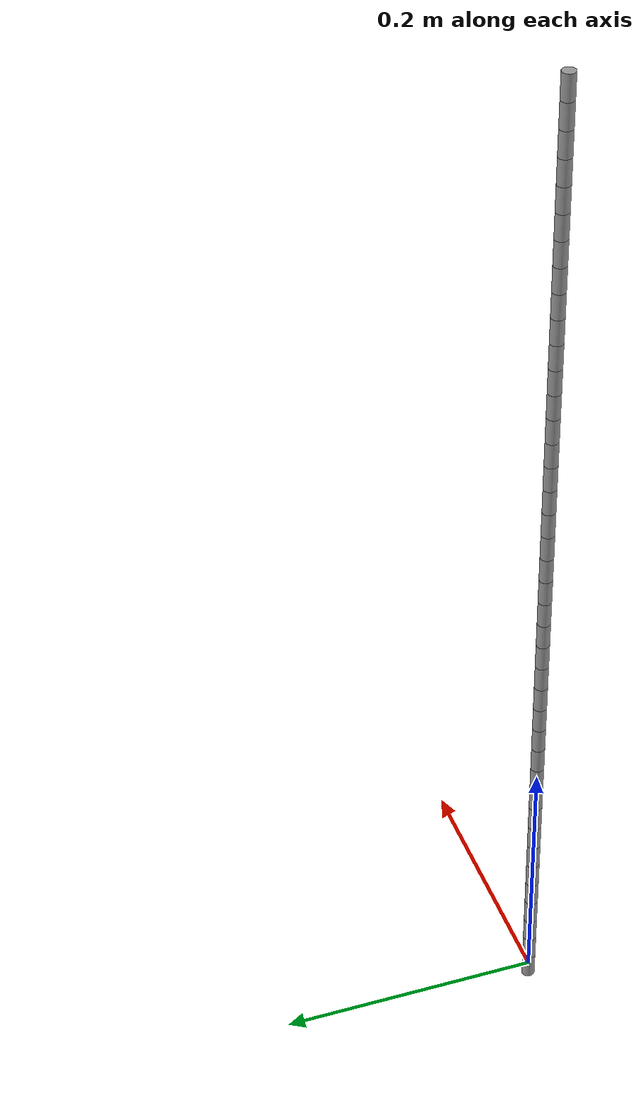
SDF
<?xml version='1.0'?>
 <sdf version='1.5'>
  <model name="tether">
   <static>false</static>

 				<!-- DEFINITION OF LINKS -->

    <link name='linking_1'>
      <pose>0 0 0 0 0 0</pose>

      <inertial>
        <mass>0.005000</mass>
        <inertia>
          <ixx>0.005000</ixx>
          <ixy>0.000000</ixy>
          <ixz>0.000000</ixz>
          <iyy>0.005000</iyy>
          <iyz>0.000000</iyz>
          <izz>0.005000</izz>
        </inertia>
      </inertial>
      <collision name="collision">
        <geometry>
          <cylinder>
            <length>0.01</length>
            <radius>0.005</radius>
          </cylinder>
        </geometry>
      </collision>
      <visual name="visual">
        <geometry>
          <cylinder>
            <length>0.02</length>
            <radius>0.005</radius>
          </cylinder>
        </geometry>
        <material>
          <script>
            <name>Gazebo/Grey</name>
          </script>
          <ambient>1 1 1 1</ambient>
        </material>
      </visual>
    </link>

    <link name='linking_2'>
    <pose> 0 0 0.02 0 0 0 </pose>

      <inertial>
        <mass>0.005000</mass>
        <inertia>
          <ixx>0.005000</ixx>
          <ixy>0.000000</ixy>
          <ixz>0.000000</ixz>
          <iyy>0.005000</iyy>
          <iyz>0.000000</iyz>
          <izz>0.005000</izz>
        </inertia>
      </inertial>
      <collision name="collision">
        <geometry>
          <cylinder>
            <length>0.01</length>
            <radius>0.005</radius>
          </cylinder>
        </geometry>
      </collision>
      <visual name="visual">
        <geometry>
          <cylinder>
            <length>0.02</length>
            <radius>0.005</radius>
          </cylinder>
        </geometry>
        <material>
          <script>
            <name>Gazebo/Grey</name>
          </script>
          <ambient>1 1 1 1</ambient>
        </material>
      </visual>
    </link>

    <joint name="tether/joint_01_02" type="revolute">
      <pose>0 0 -0.01 0 0 0</pose>
      <child>linking_2</child>
      <parent>linking_1</parent>
      <axis>
        <xyz>1 1 0</xyz>
            <limit>
          <lower>-3.00000</lower>
          <upper>3.00000</upper>
        </limit>
        <dynamics>
          <damping>0.1000000</damping>
        </dynamics>
      </axis>
    </joint>

    <link name='linking_3'>
      <pose>0 0 0.04 0 0 0 </pose>

      <inertial>
        <mass>0.005000</mass>
        <inertia>
          <ixx>0.005000</ixx>
          <ixy>0.000000</ixy>
          <ixz>0.000000</ixz>
          <iyy>0.005000</iyy>
          <iyz>0.000000</iyz>
          <izz>0.005000</izz>
        </inertia>
      </inertial>
      <collision name="collision">
        <geometry>
          <cylinder>
            <length>0.01</length>
            <radius>0.005</radius>
          </cylinder>
        </geometry>
      </collision>
      <visual name="visual">
        <geometry>
          <cylinder>
            <length>0.02</length>
            <radius>0.005</radius>
          </cylinder>
        </geometry>
        <material>
          <script>
            <name>Gazebo/Grey</name>
          </script>
          <ambient>1 1 1 1</ambient>
        </material>
      </visual>
    </link>

    <joint name="tether/joint_02_03" type="revolute">
      <pose>0 0 -0.01 0 0 0</pose>
      <child>linking_3</child>
      <parent>linking_2</parent>
      <axis>
        <xyz>1 1 0</xyz>
        <limit>
          <lower>-3.00000</lower>
          <upper>3.00000</upper>
        </limit>
        <dynamics>
          <damping>0.1000000</damping>
        </dynamics>
      </axis>
    </joint>

    <link name='linking_4'>
      <pose>0 0 0.06 0 0 0 </pose>

      <inertial>
        <mass>0.005000</mass>
        <inertia>
          <ixx>0.005000</ixx>
          <ixy>0.000000</ixy>
          <ixz>0.000000</ixz>
          <iyy>0.005000</iyy>
          <iyz>0.000000</iyz>
          <izz>0.005000</izz>
        </inertia>
      </inertial>
      <collision name="collision">
        <geometry>
          <cylinder>
            <length>0.01</length>
            <radius>0.005</radius>
          </cylinder>
        </geometry>
      </collision>
      <visual name="visual">
        <geometry>
          <cylinder>
            <length>0.02</length>
            <radius>0.005</radius>
          </cylinder>
        </geometry>
        <material>
          <script>
            <name>Gazebo/Grey</name>
          </script>
          <ambient>1 1 1 1</ambient>
        </material>
      </visual>
    </link>

    <joint name="tether/joint_03_04" type="revolute">
      <pose>0 0 -0.01 0 0 0</pose>
      <child>linking_4</child>
      <parent>linking_3</parent>
      <axis>
        <xyz>1 1 0</xyz>
        <limit>
          <lower>-3.00000</lower>
          <upper>3.00000</upper>
        </limit>
        <dynamics>
          <damping>0.1000000</damping>
        </dynamics>
      </axis>
    </joint>

    <link name='linking_5'>
      <pose>0 0 0.08 0 0 0 </pose>

      <inertial>
        <mass>0.005000</mass>
        <inertia>
          <ixx>0.005000</ixx>
          <ixy>0.000000</ixy>
          <ixz>0.000000</ixz>
          <iyy>0.005000</iyy>
          <iyz>0.000000</iyz>
          <izz>0.005000</izz>
        </inertia>
      </inertial>
      <collision name="collision">
        <geometry>
          <cylinder>
            <length>0.01</length>
            <radius>0.005</radius>
          </cylinder>
        </geometry>
      </collision>
      <visual name="visual">
        <geometry>
          <cylinder>
            <length>0.02</length>
            <radius>0.005</radius>
          </cylinder>
        </geometry>
        <material>
          <script>
            <name>Gazebo/Grey</name>
          </script>
          <ambient>1 1 1 1</ambient>
        </material>
      </visual>
    </link>

    <joint name="tether/joint_04_05" type="revolute">
      <pose>0 0 -0.01 0 0 0</pose>
      <child>linking_5</child>
      <parent>linking_4</parent>
      <axis>
        <xyz>1 1 0</xyz>
        <limit>
          <lower>-3.00000</lower>
          <upper>3.00000</upper>
        </limit>
        <dynamics>
          <damping>0.1000000</damping>
        </dynamics>
      </axis>
    </joint>

    <link name='linking_6'>
      <pose>0 0 0.1 0 0 0 </pose>

      <inertial>
        <mass>0.005000</mass>
        <inertia>
          <ixx>0.005000</ixx>
          <ixy>0.000000</ixy>
          <ixz>0.000000</ixz>
          <iyy>0.005000</iyy>
          <iyz>0.000000</iyz>
          <izz>0.005000</izz>
        </inertia>
      </inertial>
      <collision name="collision">
        <geometry>
          <cylinder>
            <length>0.01</length>
            <radius>0.005</radius>
          </cylinder>
        </geometry>
      </collision>
      <visual name="visual">
        <geometry>
          <cylinder>
            <length>0.02</length>
            <radius>0.005</radius>
          </cylinder>
        </geometry>
        <material>
          <script>
            <name>Gazebo/Grey</name>
          </script>
          <ambient>1 1 1 1</ambient>
        </material>
      </visual>
    </link>

    <joint name="tether/joint_05_06" type="revolute">
      <pose>0 0 -0.01 0 0 0</pose>
      <child>linking_6</child>
      <parent>linking_5</parent>
      <axis>
        <xyz>1 1 0</xyz>
        <limit>
          <lower>-3.00000</lower>
          <upper>3.00000</upper>
        </limit>
        <dynamics>
          <damping>0.1000000</damping>
        </dynamics>
      </axis>
    </joint>

    <link name='linking_7'>
      <pose>0 0 0.12 0 0 0 </pose>

      <inertial>
        <mass>0.005000</mass>
        <inertia>
          <ixx>0.005000</ixx>
          <ixy>0.000000</ixy>
          <ixz>0.000000</ixz>
          <iyy>0.005000</iyy>
          <iyz>0.000000</iyz>
          <izz>0.005000</izz>
        </inertia>
      </inertial>
      <collision name="collision">
        <geometry>
          <cylinder>
            <length>0.01</length>
            <radius>0.005</radius>
          </cylinder>
        </geometry>
      </collision>
      <visual name="visual">
        <geometry>
          <cylinder>
            <length>0.02</length>
            <radius>0.005</radius>
          </cylinder>
        </geometry>
        <material>
          <script>
            <name>Gazebo/Grey</name>
          </script>
          <ambient>1 1 1 1</ambient>
        </material>
      </visual>
    </link>

    <joint name="tether/joint_06_07" type="revolute">
      <pose>0 0 -0.01 0 0 0</pose>
      <child>linking_7</child>
      <parent>linking_6</parent>
      <axis>
        <xyz>1 1 0</xyz>
        <limit>
          <lower>-3.00000</lower>
          <upper>3.00000</upper>
        </limit>
        <dynamics>
          <damping>0.1000000</damping>
        </dynamics>
      </axis>
    </joint>

    <link name='linking_8'>
      <pose>0 0 0.14 0 0 0 </pose>

      <inertial>
        <mass>0.005000</mass>
        <inertia>
          <ixx>0.005000</ixx>
          <ixy>0.000000</ixy>
          <ixz>0.000000</ixz>
          <iyy>0.005000</iyy>
          <iyz>0.000000</iyz>
          <izz>0.005000</izz>
        </inertia>
      </inertial>
      <collision name="collision">
        <geometry>
          <cylinder>
            <length>0.01</length>
            <radius>0.005</radius>
          </cylinder>
        </geometry>
      </collision>
      <visual name="visual">
        <geometry>
          <cylinder>
            <length>0.02</length>
            <radius>0.005</radius>
          </cylinder>
        </geometry>
        <material>
          <script>
            <name>Gazebo/Grey</name>
          </script>
          <ambient>1 1 1 1</ambient>
        </material>
      </visual>
    </link>

    <joint name="tether/joint_07_08" type="revolute">
      <pose>0 0 -0.01 0 0 0</pose>
      <child>linking_8</child>
      <parent>linking_7</parent>
      <axis>
        <xyz>1 1 0</xyz>
        <limit>
          <lower>-3.00000</lower>
          <upper>3.00000</upper>
        </limit>
        <dynamics>
          <damping>0.1000000</damping>
        </dynamics>
      </axis>
    </joint>

    <link name='linking_9'>
      <pose>0 0 0.16 0 0 0 </pose>

      <inertial>
        <mass>0.005000</mass>
        <inertia>
          <ixx>0.005000</ixx>
          <ixy>0.000000</ixy>
          <ixz>0.000000</ixz>
          <iyy>0.005000</iyy>
          <iyz>0.000000</iyz>
          <izz>0.005000</izz>
        </inertia>
      </inertial>
      <collision name="collision">
        <geometry>
          <cylinder>
            <length>0.01</length>
            <radius>0.005</radius>
          </cylinder>
        </geometry>
      </collision>
      <visual name="visual">
        <geometry>
          <cylinder>
            <length>0.02</length>
            <radius>0.005</radius>
          </cylinder>
        </geometry>
        <material>
          <script>
            <name>Gazebo/Grey</name>
          </script>
          <ambient>1 1 1 1</ambient>
        </material>
      </visual>
    </link>

    <joint name="tether/joint_08_09" type="revolute">
      <pose>0 0 -0.01 0 0 0</pose>
      <child>linking_9</child>
      <parent>linking_8</parent>
      <axis>
        <xyz>1 1 0</xyz>
        <limit>
          <lower>-3.00000</lower>
          <upper>3.00000</upper>
        </limit>
        <dynamics>
          <damping>0.1000000</damping>
        </dynamics>
      </axis>
    </joint>

    <link name='linking_10'>
      <pose>0 0 0.18 0 0 0 </pose>

      <inertial>
        <mass>0.005000</mass>
        <inertia>
          <ixx>0.005000</ixx>
          <ixy>0.000000</ixy>
          <ixz>0.000000</ixz>
          <iyy>0.005000</iyy>
          <iyz>0.000000</iyz>
          <izz>0.005000</izz>
        </inertia>
      </inertial>
      <collision name="collision">
        <geometry>
          <cylinder>
            <length>0.01</length>
            <radius>0.005</radius>
          </cylinder>
        </geometry>
      </collision>
      <visual name="visual">
        <geometry>
          <cylinder>
            <length>0.02</length>
            <radius>0.005</radius>
          </cylinder>
        </geometry>
        <material>
          <script>
            <name>Gazebo/Grey</name>
          </script>
          <ambient>1 1 1 1</ambient>
        </material>
      </visual>
    </link>

    <joint name="tether/joint_09_10" type="revolute">
      <pose>0 0 -0.01 0 0 0</pose>
      <child>linking_10</child>
      <parent>linking_9</parent>
      <axis>
        <xyz>1 1 0</xyz>
        <limit>
          <lower>-3.00000</lower>
          <upper>3.00000</upper>
        </limit>
        <dynamics>
          <damping>0.1000000</damping>
        </dynamics>
      </axis>
    </joint>

    <link name='linking_11'>
      <pose>0 0 0.2 0 0 0 </pose>

      <inertial>
        <mass>0.005000</mass>
        <inertia>
          <ixx>0.005000</ixx>
          <ixy>0.000000</ixy>
          <ixz>0.000000</ixz>
          <iyy>0.005000</iyy>
          <iyz>0.000000</iyz>
          <izz>0.005000</izz>
        </inertia>
      </inertial>
      <collision name="collision">
        <geometry>
          <cylinder>
            <length>0.01</length>
            <radius>0.005</radius>
          </cylinder>
        </geometry>
      </collision>
      <visual name="visual">
        <geometry>
          <cylinder>
            <length>0.02</length>
            <radius>0.005</radius>
          </cylinder>
        </geometry>
        <material>
          <script>
            <name>Gazebo/Grey</name>
          </script>
          <ambient>1 1 1 1</ambient>
        </material>
      </visual>
    </link>

    <joint name="tether/joint_10_11" type="revolute">
      <pose>0 0 -0.01 0 0 0</pose>
      <child>linking_11</child>
      <parent>linking_10</parent>
      <axis>
        <xyz>1 1 0</xyz>
        <limit>
          <lower>-3.00000</lower>
          <upper>3.00000</upper>
        </limit>
        <dynamics>
          <damping>0.1000000</damping>
        </dynamics>
      </axis>
    </joint>

    <link name='linking_12'>
      <pose>0 0 0.22 0 0 0 </pose>

      <inertial>
        <mass>0.005000</mass>
        <inertia>
          <ixx>0.005000</ixx>
          <ixy>0.000000</ixy>
          <ixz>0.000000</ixz>
          <iyy>0.005000</iyy>
          <iyz>0.000000</iyz>
          <izz>0.005000</izz>
        </inertia>
      </inertial>
      <collision name="collision">
        <geometry>
          <cylinder>
            <length>0.01</length>
            <radius>0.005</radius>
          </cylinder>
        </geometry>
      </collision>
      <visual name="visual">
        <geometry>
          <cylinder>
            <length>0.02</length>
            <radius>0.005</radius>
          </cylinder>
        </geometry>
        <material>
          <script>
            <name>Gazebo/Grey</name>
          </script>
          <ambient>1 1 1 1</ambient>
        </material>
      </visual>
    </link>

    <joint name="tether/joint_11_12" type="revolute">
      <pose>0 0 -0.01 0 0 0</pose>
      <child>linking_12</child>
      <parent>linking_11</parent>
      <axis>
        <xyz>1 1 0</xyz>
        <limit>
          <lower>-3.00000</lower>
          <upper>3.00000</upper>
        </limit>
        <dynamics>
          <damping>0.1000000</damping>
        </dynamics>
      </axis>
    </joint>

    <link name='linking_13'>
      <pose>0 0 0.24 0 0 0 </pose>

      <inertial>
        <mass>0.005000</mass>
        <inertia>
          <ixx>0.005000</ixx>
          <ixy>0.000000</ixy>
          <ixz>0.000000</ixz>
          <iyy>0.005000</iyy>
          <iyz>0.000000</iyz>
          <izz>0.005000</izz>
        </inertia>
      </inertial>
      <collision name="collision">
        <geometry>
          <cylinder>
            <length>0.01</length>
            <radius>0.005</radius>
          </cylinder>
        </geometry>
      </collision>
      <visual name="visual">
        <geometry>
          <cylinder>
            <length>0.02</length>
            <radius>0.005</radius>
          </cylinder>
        </geometry>
        <material>
          <script>
            <name>Gazebo/Grey</name>
          </script>
          <ambient>1 1 1 1</ambient>
        </material>
      </visual>
    </link>

    <joint name="tether/joint_12_13" type="revolute">
      <pose>0 0 -0.01 0 0 0</pose>
      <child>linking_13</child>
      <parent>linking_12</parent>
      <axis>
        <xyz>1 1 0</xyz>
        <limit>
          <lower>-3.00000</lower>
          <upper>3.00000</upper>
        </limit>
        <dynamics>
          <damping>0.1000000</damping>
        </dynamics>
      </axis>
    </joint>

    <link name='linking_14'>
      <pose>0 0 0.26 0 0 0 </pose>

      <inertial>
        <mass>0.005000</mass>
        <inertia>
          <ixx>0.005000</ixx>
          <ixy>0.000000</ixy>
          <ixz>0.000000</ixz>
          <iyy>0.005000</iyy>
          <iyz>0.000000</iyz>
          <izz>0.005000</izz>
        </inertia>
      </inertial>
      <collision name="collision">
        <geometry>
          <cylinder>
            <length>0.01</length>
            <radius>0.005</radius>
          </cylinder>
        </geometry>
      </collision>
      <visual name="visual">
        <geometry>
          <cylinder>
            <length>0.02</length>
            <radius>0.005</radius>
          </cylinder>
        </geometry>
        <material>
          <script>
            <name>Gazebo/Grey</name>
          </script>
          <ambient>1 1 1 1</ambient>
        </material>
      </visual>
    </link>

    <joint name="tether/joint_13_14" type="revolute">
      <pose>0 0 -0.01 0 0 0</pose>
      <child>linking_14</child>
      <parent>linking_13</parent>
      <axis>
        <xyz>1 1 0</xyz>
        <limit>
          <lower>-3.00000</lower>
          <upper>3.00000</upper>
        </limit>
        <dynamics>
          <damping>0.1000000</damping>
        </dynamics>
      </axis>
    </joint>

    <link name='linking_15'>
      <pose>0 0 0.28 0 0 0 </pose>

      <inertial>
        <mass>0.005000</mass>
        <inertia>
          <ixx>0.005000</ixx>
          <ixy>0.000000</ixy>
          <ixz>0.000000</ixz>
          <iyy>0.005000</iyy>
          <iyz>0.000000</iyz>
          <izz>0.005000</izz>
        </inertia>
      </inertial>
      <collision name="collision">
        <geometry>
          <cylinder>
            <length>0.01</length>
            <radius>0.005</radius>
          </cylinder>
        </geometry>
      </collision>
      <visual name="visual">
        <geometry>
          <cylinder>
            <length>0.02</length>
            <radius>0.005</radius>
          </cylinder>
        </geometry>
        <material>
          <script>
            <name>Gazebo/Grey</name>
          </script>
          <ambient>1 1 1 1</ambient>
        </material>
      </visual>
    </link>

    <joint name="tether/joint_14_15" type="revolute">
      <pose>0 0 -0.01 0 0 0</pose>
      <child>linking_15</child>
      <parent>linking_14</parent>
      <axis>
        <xyz>1 1 0</xyz>
        <limit>
          <lower>-3.00000</lower>
          <upper>3.00000</upper>
        </limit>
        <dynamics>
          <damping>0.1000000</damping>
        </dynamics>
      </axis>
    </joint>

    <link name='linking_16'>
      <pose>0 0 0.30 0 0 0 </pose>

      <inertial>
        <mass>0.005000</mass>
        <inertia>
          <ixx>0.005000</ixx>
          <ixy>0.000000</ixy>
          <ixz>0.000000</ixz>
          <iyy>0.005000</iyy>
          <iyz>0.000000</iyz>
          <izz>0.005000</izz>
        </inertia>
      </inertial>
      <collision name="collision">
        <geometry>
          <cylinder>
            <length>0.01</length>
            <radius>0.005</radius>
          </cylinder>
        </geometry>
      </collision>
      <visual name="visual">
        <geometry>
          <cylinder>
            <length>0.02</length>
            <radius>0.005</radius>
          </cylinder>
        </geometry>
        <material>
          <script>
            <name>Gazebo/Grey</name>
          </script>
          <ambient>1 1 1 1</ambient>
        </material>
      </visual>
    </link>

    <joint name="tether/joint_15_16" type="revolute">
      <pose>0 0 -0.01 0 0 0</pose>
      <child>linking_16</child>
      <parent>linking_15</parent>
      <axis>
        <xyz>1 1 0</xyz>
        <limit>
          <lower>-3.00000</lower>
          <upper>3.00000</upper>
        </limit>
        <dynamics>
          <damping>0.1000000</damping>
        </dynamics>
      </axis>
    </joint>

    <link name='linking_17'>
      <pose>0 0 0.32 0 0 0 </pose>

      <inertial>
        <mass>0.005000</mass>
        <inertia>
          <ixx>0.005000</ixx>
          <ixy>0.000000</ixy>
          <ixz>0.000000</ixz>
          <iyy>0.005000</iyy>
          <iyz>0.000000</iyz>
          <izz>0.005000</izz>
        </inertia>
      </inertial>
      <collision name="collision">
        <geometry>
          <cylinder>
            <length>0.01</length>
            <radius>0.005</radius>
          </cylinder>
        </geometry>
      </collision>
      <visual name="visual">
        <geometry>
          <cylinder>
            <length>0.02</length>
            <radius>0.005</radius>
          </cylinder>
        </geometry>
        <material>
          <script>
            <name>Gazebo/Grey</name>
          </script>
          <ambient>1 1 1 1</ambient>
        </material>
      </visual>
    </link>

    <joint name="tether/joint_16_17" type="revolute">
      <pose>0 0 -0.01 0 0 0</pose>
      <child>linking_17</child>
      <parent>linking_16</parent>
      <axis>
        <xyz>1 1 0</xyz>
        <limit>
          <lower>-3.00000</lower>
          <upper>3.00000</upper>
        </limit>
        <dynamics>
          <damping>0.1000000</damping>
        </dynamics>
      </axis>
    </joint>

    <link name='linking_18'>
      <pose>0 0 0.34 0 0 0 </pose>

      <inertial>
        <mass>0.005000</mass>
        <inertia>
          <ixx>0.005000</ixx>
          <ixy>0.000000</ixy>
          <ixz>0.000000</ixz>
          <iyy>0.005000</iyy>
          <iyz>0.000000</iyz>
          <izz>0.005000</izz>
        </inertia>
      </inertial>
      <collision name="collision">
        <geometry>
          <cylinder>
            <length>0.01</length>
            <radius>0.005</radius>
          </cylinder>
        </geometry>
      </collision>
      <visual name="visual">
        <geometry>
          <cylinder>
            <length>0.02</length>
            <radius>0.005</radius>
          </cylinder>
        </geometry>
        <material>
          <script>
            <name>Gazebo/Grey</name>
          </script>
          <ambient>1 1 1 1</ambient>
        </material>
      </visual>
    </link>

    <joint name="tether/joint_17_18" type="revolute">
      <pose>0 0 -0.01 0 0 0</pose>
      <child>linking_18</child>
      <parent>linking_17</parent>
      <axis>
        <xyz>1 1 0</xyz>
        <limit>
          <lower>-3.00000</lower>
          <upper>3.00000</upper>
        </limit>
        <dynamics>
          <damping>0.1000000</damping>
        </dynamics>
      </axis>
    </joint>

    <link name='linking_19'>
      <pose>0 0 0.36 0 0 0 </pose>

      <inertial>
        <mass>0.005000</mass>
        <inertia>
          <ixx>0.005000</ixx>
          <ixy>0.000000</ixy>
          <ixz>0.000000</ixz>
          <iyy>0.005000</iyy>
          <iyz>0.000000</iyz>
          <izz>0.005000</izz>
        </inertia>
      </inertial>
      <collision name="collision">
        <geometry>
          <cylinder>
            <length>0.01</length>
            <radius>0.005</radius>
          </cylinder>
        </geometry>
      </collision>
      <visual name="visual">
        <geometry>
          <cylinder>
            <length>0.02</length>
            <radius>0.005</radius>
          </cylinder>
        </geometry>
        <material>
          <script>
            <name>Gazebo/Grey</name>
          </script>
          <ambient>1 1 1 1</ambient>
        </material>
      </visual>
    </link>

    <joint name="tether/joint_18_19" type="revolute">
      <pose>0 0 -0.01 0 0 0</pose>
      <child>linking_19</child>
      <parent>linking_18</parent>
      <axis>
        <xyz>1 1 0</xyz>
        <limit>
          <lower>-3.00000</lower>
          <upper>3.00000</upper>
        </limit>
        <dynamics>
          <damping>0.1000000</damping>
        </dynamics>
      </axis>
    </joint>

    <link name='linking_20'>
      <pose>0 0 0.38 0 0 0 </pose>

      <inertial>
        <mass>0.005000</mass>
        <inertia>
          <ixx>0.005000</ixx>
          <ixy>0.000000</ixy>
          <ixz>0.000000</ixz>
          <iyy>0.005000</iyy>
          <iyz>0.000000</iyz>
          <izz>0.005000</izz>
        </inertia>
      </inertial>
      <collision name="collision">
        <geometry>
          <cylinder>
            <length>0.01</length>
            <radius>0.005</radius>
          </cylinder>
        </geometry>
      </collision>
      <visual name="visual">
        <geometry>
          <cylinder>
            <length>0.02</length>
            <radius>0.005</radius>
          </cylinder>
        </geometry>
        <material>
          <script>
            <name>Gazebo/Grey</name>
          </script>
          <ambient>1 1 1 1</ambient>
        </material>
      </visual>
    </link>

    <joint name="tether/joint_19_20" type="revolute">
      <pose>0 0 -0.01 0 0 0</pose>
      <child>linking_20</child>
      <parent>linking_19</parent>
      <axis>
        <xyz>1 1 0</xyz>
        <limit>
          <lower>-3.00000</lower>
          <upper>3.00000</upper>
        </limit>
        <dynamics>
          <damping>0.1000000</damping>
        </dynamics>
      </axis>
    </joint>

    <link name='linking_21'>
      <pose>0 0 0.40 0 0 0 </pose>

      <inertial>
        <mass>0.005000</mass>
        <inertia>
          <ixx>0.005000</ixx>
          <ixy>0.000000</ixy>
          <ixz>0.000000</ixz>
          <iyy>0.005000</iyy>
          <iyz>0.000000</iyz>
          <izz>0.005000</izz>
        </inertia>
      </inertial>
      <collision name="collision">
        <geometry>
          <cylinder>
            <length>0.01</length>
            <radius>0.005</radius>
          </cylinder>
        </geometry>
      </collision>
      <visual name="visual">
        <geometry>
          <cylinder>
            <length>0.02</length>
            <radius>0.005</radius>
          </cylinder>
        </geometry>
        <material>
          <script>
            <name>Gazebo/Grey</name>
          </script>
          <ambient>1 1 1 1</ambient>
        </material>
      </visual>
    </link>

    <joint name="tether/joint_20_21" type="revolute">
      <pose>0 0 -0.01 0 0 0</pose>
      <child>linking_21</child>
      <parent>linking_20</parent>
      <axis>
        <xyz>1 1 0</xyz>
        <limit>
          <lower>-3.00000</lower>
          <upper>3.00000</upper>
        </limit>
        <dynamics>
          <damping>0.1000000</damping>
        </dynamics>
      </axis>
    </joint>

    <link name='linking_22'>
      <pose>0 0 0.42 0 0 0 </pose>

      <inertial>
        <mass>0.005000</mass>
        <inertia>
          <ixx>0.005000</ixx>
          <ixy>0.000000</ixy>
          <ixz>0.000000</ixz>
          <iyy>0.005000</iyy>
          <iyz>0.000000</iyz>
          <izz>0.005000</izz>
        </inertia>
      </inertial>
      <collision name="collision">
        <geometry>
          <cylinder>
            <length>0.01</length>
            <radius>0.005</radius>
          </cylinder>
        </geometry>
      </collision>
      <visual name="visual">
        <geometry>
          <cylinder>
            <length>0.02</length>
            <radius>0.005</radius>
          </cylinder>
        </geometry>
        <material>
          <script>
            <name>Gazebo/Grey</name>
          </script>
          <ambient>1 1 1 1</ambient>
        </material>
      </visual>
    </link>

    <joint name="tether/joint_21_22" type="revolute">
      <pose>0 0 -0.01 0 0 0</pose>
      <child>linking_22</child>
      <parent>linking_21</parent>
      <axis>
        <xyz>1 1 0</xyz>
        <limit>
          <lower>-3.00000</lower>
          <upper>3.00000</upper>
        </limit>
        <dynamics>
          <damping>0.1000000</damping>
        </dynamics>
      </axis>
    </joint>

    <link name='linking_23'>
      <pose>0 0 0.44 0 0 0 </pose>

      <inertial>
        <mass>0.005000</mass>
        <inertia>
          <ixx>0.005000</ixx>
          <ixy>0.000000</ixy>
          <ixz>0.000000</ixz>
          <iyy>0.005000</iyy>
          <iyz>0.000000</iyz>
          <izz>0.005000</izz>
        </inertia>
      </inertial>
      <collision name="collision">
        <geometry>
          <cylinder>
            <length>0.01</length>
            <radius>0.005</radius>
          </cylinder>
        </geometry>
      </collision>
      <visual name="visual">
        <geometry>
          <cylinder>
            <length>0.02</length>
            <radius>0.005</radius>
          </cylinder>
        </geometry>
        <material>
          <script>
            <name>Gazebo/Grey</name>
          </script>
          <ambient>1 1 1 1</ambient>
        </material>
      </visual>
    </link>

    <joint name="tether/joint_22_23" type="revolute">
      <pose>0 0 -0.01 0 0 0</pose>
      <child>linking_23</child>
      <parent>linking_22</parent>
      <axis>
        <xyz>1 1 0</xyz>
        <limit>
          <lower>-3.00000</lower>
          <upper>3.00000</upper>
        </limit>
        <dynamics>
          <damping>0.1000000</damping>
        </dynamics>
      </axis>
    </joint>

    <link name='linking_24'>
      <pose>0 0 0.46 0 0 0 </pose>

      <inertial>
        <mass>0.005000</mass>
        <inertia>
          <ixx>0.005000</ixx>
          <ixy>0.000000</ixy>
          <ixz>0.000000</ixz>
          <iyy>0.005000</iyy>
          <iyz>0.000000</iyz>
          <izz>0.005000</izz>
        </inertia>
      </inertial>
      <collision name="collision">
        <geometry>
          <cylinder>
            <length>0.01</length>
            <radius>0.005</radius>
          </cylinder>
        </geometry>
      </collision>
      <visual name="visual">
        <geometry>
          <cylinder>
            <length>0.02</length>
            <radius>0.005</radius>
          </cylinder>
        </geometry>
        <material>
          <script>
            <name>Gazebo/Grey</name>
          </script>
          <ambient>1 1 1 1</ambient>
        </material>
      </visual>
    </link>

    <joint name="tether/joint_23_24" type="revolute">
      <pose>0 0 -0.01 0 0 0</pose>
      <child>linking_24</child>
      <parent>linking_23</parent>
      <axis>
        <xyz>1 1 0</xyz>
        <limit>
          <lower>-3.00000</lower>
          <upper>3.00000</upper>
        </limit>
        <dynamics>
          <damping>0.1000000</damping>
        </dynamics>
      </axis>
    </joint>

    <link name='linking_25'>
      <pose>0 0 0.48 0 0 0 </pose>

      <inertial>
        <mass>0.005000</mass>
        <inertia>
          <ixx>0.005000</ixx>
          <ixy>0.000000</ixy>
          <ixz>0.000000</ixz>
          <iyy>0.005000</iyy>
          <iyz>0.000000</iyz>
          <izz>0.005000</izz>
        </inertia>
      </inertial>
      <collision name="collision">
        <geometry>
          <cylinder>
            <length>0.01</length>
            <radius>0.005</radius>
          </cylinder>
        </geometry>
      </collision>
      <visual name="visual">
        <geometry>
          <cylinder>
            <length>0.02</length>
            <radius>0.005</radius>
          </cylinder>
        </geometry>
        <material>
          <script>
            <name>Gazebo/Grey</name>
          </script>
          <ambient>1 1 1 1</ambient>
        </material>
      </visual>
    </link>

    <joint name="tether/joint_24_25" type="revolute">
      <pose>0 0 -0.01 0 0 0</pose>
      <child>linking_25</child>
      <parent>linking_24</parent>
      <axis>
        <xyz>1 1 0</xyz>
        <limit>
          <lower>-3.00000</lower>
          <upper>3.00000</upper>
        </limit>
        <dynamics>
          <damping>0.1000000</damping>
        </dynamics>
      </axis>
    </joint>

    <link name='linking_26'>
      <pose>0 0 0.50 0 0 0 </pose>

      <inertial>
        <mass>0.005000</mass>
        <inertia>
          <ixx>0.005000</ixx>
          <ixy>0.000000</ixy>
          <ixz>0.000000</ixz>
          <iyy>0.005000</iyy>
          <iyz>0.000000</iyz>
          <izz>0.005000</izz>
        </inertia>
      </inertial>
      <collision name="collision">
        <geometry>
          <cylinder>
            <length>0.01</length>
            <radius>0.005</radius>
          </cylinder>
        </geometry>
      </collision>
      <visual name="visual">
        <geometry>
          <cylinder>
            <length>0.02</length>
            <radius>0.005</radius>
          </cylinder>
        </geometry>
        <material>
          <script>
            <name>Gazebo/Grey</name>
          </script>
          <ambient>1 1 1 1</ambient>
        </material>
      </visual>
    </link>

    <joint name="tether/joint_25_26" type="revolute">
      <pose>0 0 -0.01 0 0 0</pose>
      <child>linking_26</child>
      <parent>linking_25</parent>
      <axis>
        <xyz>1 1 0</xyz>
        <limit>
          <lower>-3.00000</lower>
          <upper>3.00000</upper>
        </limit>
        <dynamics>
          <damping>0.1000000</damping>
        </dynamics>
      </axis>
    </joint>

    <link name='linking_27'>
      <pose>0 0 0.52 0 0 0 </pose>

      <inertial>
        <mass>0.005000</mass>
        <inertia>
          <ixx>0.005000</ixx>
          <ixy>0.000000</ixy>
          <ixz>0.000000</ixz>
          <iyy>0.005000</iyy>
          <iyz>0.000000</iyz>
          <izz>0.005000</izz>
        </inertia>
      </inertial>
      <collision name="collision">
        <geometry>
          <cylinder>
            <length>0.01</length>
            <radius>0.005</radius>
          </cylinder>
        </geometry>
      </collision>
      <visual name="visual">
        <geometry>
          <cylinder>
            <length>0.02</length>
            <radius>0.005</radius>
          </cylinder>
        </geometry>
        <material>
          <script>
            <name>Gazebo/Grey</name>
          </script>
          <ambient>1 1 1 1</ambient>
        </material>
      </visual>
    </link>

    <joint name="tether/joint_26_27" type="revolute">
      <pose>0 0 -0.01 0 0 0</pose>
      <child>linking_27</child>
      <parent>linking_26</parent>
      <axis>
        <xyz>1 1 0</xyz>
        <limit>
          <lower>-3.00000</lower>
          <upper>3.00000</upper>
        </limit>
        <dynamics>
          <damping>0.1000000</damping>
        </dynamics>
      </axis>
    </joint>

    <link name='linking_28'>
      <pose>0 0 0.54 0 0 0 </pose>

      <inertial>
        <mass>0.005000</mass>
        <inertia>
          <ixx>0.005000</ixx>
          <ixy>0.000000</ixy>
          <ixz>0.000000</ixz>
          <iyy>0.005000</iyy>
          <iyz>0.000000</iyz>
          <izz>0.005000</izz>
        </inertia>
      </inertial>
      <collision name="collision">
        <geometry>
          <cylinder>
            <length>0.01</length>
            <radius>0.005</radius>
          </cylinder>
        </geometry>
      </collision>
      <visual name="visual">
        <geometry>
          <cylinder>
            <length>0.02</length>
            <radius>0.005</radius>
          </cylinder>
        </geometry>
        <material>
          <script>
            <name>Gazebo/Grey</name>
          </script>
          <ambient>1 1 1 1</ambient>
        </material>
      </visual>
    </link>

    <joint name="tether/joint_27_28" type="revolute">
      <pose>0 0 -0.01 0 0 0</pose>
      <child>linking_28</child>
      <parent>linking_27</parent>
      <axis>
        <xyz>1 1 0</xyz>
        <limit>
          <lower>-3.00000</lower>
          <upper>3.00000</upper>
        </limit>
        <dynamics>
          <damping>0.1000000</damping>
        </dynamics>
      </axis>
    </joint>

    <link name='linking_29'>
      <pose>0 0 0.56 0 0 0 </pose>

      <inertial>
        <mass>0.005000</mass>
        <inertia>
          <ixx>0.005000</ixx>
          <ixy>0.000000</ixy>
          <ixz>0.000000</ixz>
          <iyy>0.005000</iyy>
          <iyz>0.000000</iyz>
          <izz>0.005000</izz>
        </inertia>
      </inertial>
      <collision name="collision">
        <geometry>
          <cylinder>
            <length>0.01</length>
            <radius>0.005</radius>
          </cylinder>
        </geometry>
      </collision>
      <visual name="visual">
        <geometry>
          <cylinder>
            <length>0.02</length>
            <radius>0.005</radius>
          </cylinder>
        </geometry>
        <material>
          <script>
            <name>Gazebo/Grey</name>
          </script>
          <ambient>1 1 1 1</ambient>
        </material>
      </visual>
    </link>

    <joint name="tether/joint_28_29" type="revolute">
      <pose>0 0 -0.01 0 0 0</pose>
      <child>linking_29</child>
      <parent>linking_28</parent>
      <axis>
        <xyz>1 1 0</xyz>
        <limit>
          <lower>-3.00000</lower>
          <upper>3.00000</upper>
        </limit>
        <dynamics>
          <damping>0.1000000</damping>
        </dynamics>
      </axis>
    </joint>

    <link name='linking_30'>
      <pose>0 0 0.58 0 0 0 </pose>

      <inertial>
        <mass>0.005000</mass>
        <inertia>
          <ixx>0.005000</ixx>
          <ixy>0.000000</ixy>
          <ixz>0.000000</ixz>
          <iyy>0.005000</iyy>
          <iyz>0.000000</iyz>
          <izz>0.005000</izz>
        </inertia>
      </inertial>
      <collision name="collision">
        <geometry>
          <cylinder>
            <length>0.01</length>
            <radius>0.005</radius>
          </cylinder>
        </geometry>
      </collision>
      <visual name="visual">
        <geometry>
          <cylinder>
            <length>0.02</length>
            <radius>0.005</radius>
          </cylinder>
        </geometry>
        <material>
          <script>
            <name>Gazebo/Grey</name>
          </script>
          <ambient>1 1 1 1</ambient>
        </material>
      </visual>
    </link>

    <joint name="tether/joint_29_30" type="revolute">
      <pose>0 0 -0.01 0 0 0</pose>
      <child>linking_30</child>
      <parent>linking_29</parent>
      <axis>
        <xyz>1 1 0</xyz>
        <limit>
          <lower>-3.00000</lower>
          <upper>3.00000</upper>
        </limit>
        <dynamics>
          <damping>0.1000000</damping>
        </dynamics>
      </axis>
    </joint>

    <link name='linking_31'>
      <pose>0 0 0.60 0 0 0 </pose>

      <inertial>
        <mass>0.005000</mass>
        <inertia>
          <ixx>0.005000</ixx>
          <ixy>0.000000</ixy>
          <ixz>0.000000</ixz>
          <iyy>0.005000</iyy>
          <iyz>0.000000</iyz>
          <izz>0.005000</izz>
        </inertia>
      </inertial>
      <collision name="collision">
        <geometry>
          <cylinder>
            <length>0.01</length>
            <radius>0.005</radius>
          </cylinder>
        </geometry>
      </collision>
      <visual name="visual">
        <geometry>
          <cylinder>
            <length>0.02</length>
            <radius>0.005</radius>
          </cylinder>
        </geometry>
        <material>
          <script>
            <name>Gazebo/Grey</name>
          </script>
          <ambient>1 1 1 1</ambient>
        </material>
      </visual>
    </link>

    <joint name="tether/joint_30_31" type="revolute">
      <pose>0 0 -0.01 0 0 0</pose>
      <child>linking_31</child>
      <parent>linking_30</parent>
      <axis>
        <xyz>1 1 0</xyz>
        <limit>
          <lower>-3.00000</lower>
          <upper>3.00000</upper>
        </limit>
        <dynamics>
          <damping>0.1000000</damping>
        </dynamics>
      </axis>
    </joint>

    <link name='linking_32'>
      <pose>0 0 0.62 0 0 0 </pose>

      <inertial>
        <mass>0.005000</mass>
        <inertia>
          <ixx>0.005000</ixx>
          <ixy>0.000000</ixy>
          <ixz>0.000000</ixz>
          <iyy>0.005000</iyy>
          <iyz>0.000000</iyz>
          <izz>0.005000</izz>
        </inertia>
      </inertial>
      <collision name="collision">
        <geometry>
          <cylinder>
            <length>0.01</length>
            <radius>0.005</radius>
          </cylinder>
        </geometry>
      </collision>
      <visual name="visual">
        <geometry>
          <cylinder>
            <length>0.02</length>
            <radius>0.005</radius>
          </cylinder>
        </geometry>
        <material>
          <script>
            <name>Gazebo/Grey</name>
          </script>
          <ambient>1 1 1 1</ambient>
        </material>
      </visual>
    </link>

    <joint name="tether/joint_31_32" type="revolute">
      <pose>0 0 -0.01 0 0 0</pose>
      <child>linking_32</child>
      <parent>linking_31</parent>
      <axis>
        <xyz>1 1 0</xyz>
        <limit>
          <lower>-3.00000</lower>
          <upper>3.00000</upper>
        </limit>
        <dynamics>
          <damping>0.1000000</damping>
        </dynamics>
      </axis>
    </joint>

    <link name='linking_33'>
      <pose>0 0 0.64 0 0 0 </pose>

      <inertial>
        <mass>0.005000</mass>
        <inertia>
          <ixx>0.005000</ixx>
          <ixy>0.000000</ixy>
          <ixz>0.000000</ixz>
          <iyy>0.005000</iyy>
          <iyz>0.000000</iyz>
          <izz>0.005000</izz>
        </inertia>
      </inertial>
      <collision name="collision">
        <geometry>
          <cylinder>
            <length>0.01</length>
            <radius>0.005</radius>
          </cylinder>
        </geometry>
      </collision>
      <visual name="visual">
        <geometry>
          <cylinder>
            <length>0.02</length>
            <radius>0.005</radius>
          </cylinder>
        </geometry>
        <material>
          <script>
            <name>Gazebo/Grey</name>
          </script>
          <ambient>1 1 1 1</ambient>
        </material>
      </visual>
    </link>

    <joint name="tether/joint_32_33" type="revolute">
      <pose>0 0 -0.01 0 0 0</pose>
      <child>linking_33</child>
      <parent>linking_32</parent>
      <axis>
        <xyz>1 1 0</xyz>
        <limit>
          <lower>-3.00000</lower>
          <upper>3.00000</upper>
        </limit>
        <dynamics>
          <damping>0.1000000</damping>
        </dynamics>
      </axis>
    </joint>

    <link name='linking_34'>
      <pose>0 0 0.66 0 0 0 </pose>

      <inertial>
        <mass>0.005000</mass>
        <inertia>
          <ixx>0.005000</ixx>
          <ixy>0.000000</ixy>
          <ixz>0.000000</ixz>
          <iyy>0.005000</iyy>
          <iyz>0.000000</iyz>
          <izz>0.005000</izz>
        </inertia>
      </inertial>
      <collision name="collision">
        <geometry>
          <cylinder>
            <length>0.01</length>
            <radius>0.005</radius>
          </cylinder>
        </geometry>
      </collision>
      <visual name="visual">
        <geometry>
          <cylinder>
            <length>0.02</length>
            <radius>0.005</radius>
          </cylinder>
        </geometry>
        <material>
          <script>
            <name>Gazebo/Grey</name>
          </script>
          <ambient>1 1 1 1</ambient>
        </material>
      </visual>
    </link>

    <joint name="tether/joint_33_34" type="revolute">
      <pose>0 0 -0.01 0 0 0</pose>
      <child>linking_34</child>
      <parent>linking_33</parent>
      <axis>
        <xyz>1 1 0</xyz>
        <limit>
          <lower>-3.00000</lower>
          <upper>3.00000</upper>
        </limit>
        <dynamics>
          <damping>0.1000000</damping>
        </dynamics>
      </axis>
    </joint>

    <link name='linking_35'>
      <pose>0 0 0.68 0 0 0 </pose>

      <inertial>
        <mass>0.005000</mass>
        <inertia>
          <ixx>0.005000</ixx>
          <ixy>0.000000</ixy>
          <ixz>0.000000</ixz>
          <iyy>0.005000</iyy>
          <iyz>0.000000</iyz>
          <izz>0.005000</izz>
        </inertia>
      </inertial>
      <collision name="collision">
        <geometry>
          <cylinder>
            <length>0.01</length>
            <radius>0.005</radius>
          </cylinder>
        </geometry>
      </collision>
      <visual name="visual">
        <geometry>
          <cylinder>
            <length>0.02</length>
            <radius>0.005</radius>
          </cylinder>
        </geometry>
        <material>
          <script>
            <name>Gazebo/Grey</name>
          </script>
          <ambient>1 1 1 1</ambient>
        </material>
      </visual>
    </link>

    <joint name="tether/joint_34_35" type="revolute">
      <pose>0 0 -0.01 0 0 0</pose>
      <child>linking_35</child>
      <parent>linking_34</parent>
      <axis>
        <xyz>1 1 0</xyz>
        <limit>
          <lower>-3.00000</lower>
          <upper>3.00000</upper>
        </limit>
        <dynamics>
          <damping>0.1000000</damping>
        </dynamics>
      </axis>
    </joint>

    <link name='linking_36'>
      <pose>0 0 0.70 0 0 0 </pose>

      <inertial>
        <mass>0.005000</mass>
        <inertia>
          <ixx>0.005000</ixx>
          <ixy>0.000000</ixy>
          <ixz>0.000000</ixz>
          <iyy>0.005000</iyy>
          <iyz>0.000000</iyz>
          <izz>0.005000</izz>
        </inertia>
      </inertial>
      <collision name="collision">
        <geometry>
          <cylinder>
            <length>0.01</length>
            <radius>0.005</radius>
          </cylinder>
        </geometry>
      </collision>
      <visual name="visual">
        <geometry>
          <cylinder>
            <length>0.02</length>
            <radius>0.005</radius>
          </cylinder>
        </geometry>
        <material>
          <script>
            <name>Gazebo/Grey</name>
          </script>
          <ambient>1 1 1 1</ambient>
        </material>
      </visual>
    </link>

    <joint name="tether/joint_35_36" type="revolute">
      <pose>0 0 -0.01 0 0 0</pose>
      <child>linking_36</child>
      <parent>linking_35</parent>
      <axis>
        <xyz>1 1 0</xyz>
        <limit>
          <lower>-3.00000</lower>
          <upper>3.00000</upper>
        </limit>
        <dynamics>
          <damping>0.1000000</damping>
        </dynamics>
      </axis>
    </joint>

    <link name='linking_37'>
      <pose>0 0 0.72 0 0 0 </pose>

      <inertial>
        <mass>0.005000</mass>
        <inertia>
          <ixx>0.005000</ixx>
          <ixy>0.000000</ixy>
          <ixz>0.000000</ixz>
          <iyy>0.005000</iyy>
          <iyz>0.000000</iyz>
          <izz>0.005000</izz>
        </inertia>
      </inertial>
      <collision name="collision">
        <geometry>
          <cylinder>
            <length>0.01</length>
            <radius>0.005</radius>
          </cylinder>
        </geometry>
      </collision>
      <visual name="visual">
        <geometry>
          <cylinder>
            <length>0.02</length>
            <radius>0.005</radius>
          </cylinder>
        </geometry>
        <material>
          <script>
            <name>Gazebo/Grey</name>
          </script>
          <ambient>1 1 1 1</ambient>
        </material>
      </visual>
    </link>

    <joint name="tether/joint_36_37" type="revolute">
      <pose>0 0 -0.01 0 0 0</pose>
      <child>linking_37</child>
      <parent>linking_36</parent>
      <axis>
        <xyz>1 1 0</xyz>
        <limit>
          <lower>-3.00000</lower>
          <upper>3.00000</upper>
        </limit>
        <dynamics>
          <damping>0.1000000</damping>
        </dynamics>
      </axis>
    </joint>

    <link name='linking_38'>
      <pose>0 0 0.74 0 0 0 </pose>

      <inertial>
        <mass>0.005000</mass>
        <inertia>
          <ixx>0.005000</ixx>
          <ixy>0.000000</ixy>
          <ixz>0.000000</ixz>
          <iyy>0.005000</iyy>
          <iyz>0.000000</iyz>
          <izz>0.005000</izz>
        </inertia>
      </inertial>
      <collision name="collision">
        <geometry>
          <cylinder>
            <length>0.01</length>
            <radius>0.005</radius>
          </cylinder>
        </geometry>
      </collision>
      <visual name="visual">
        <geometry>
          <cylinder>
            <length>0.02</length>
            <radius>0.005</radius>
          </cylinder>
        </geometry>
        <material>
          <script>
            <name>Gazebo/Grey</name>
          </script>
          <ambient>1 1 1 1</ambient>
        </material>
      </visual>
    </link>

    <joint name="tether/joint_37_38" type="revolute">
      <pose>0 0 -0.01 0 0 0</pose>
      <child>linking_38</child>
      <parent>linking_37</parent>
      <axis>
        <xyz>1 1 0</xyz>
        <limit>
          <lower>-3.00000</lower>
          <upper>3.00000</upper>
        </limit>
        <dynamics>
          <damping>0.1000000</damping>
        </dynamics>
      </axis>
    </joint>

    <link name='linking_39'>
      <pose>0 0 0.76 0 0 0 </pose>

      <inertial>
        <mass>0.005000</mass>
        <inertia>
          <ixx>0.005000</ixx>
          <ixy>0.000000</ixy>
          <ixz>0.000000</ixz>
          <iyy>0.005000</iyy>
          <iyz>0.000000</iyz>
          <izz>0.005000</izz>
        </inertia>
      </inertial>
      <collision name="collision">
        <geometry>
          <cylinder>
            <length>0.01</length>
            <radius>0.005</radius>
          </cylinder>
        </geometry>
      </collision>
      <visual name="visual">
        <geometry>
          <cylinder>
            <length>0.02</length>
            <radius>0.005</radius>
          </cylinder>
        </geometry>
        <material>
          <script>
            <name>Gazebo/Grey</name>
          </script>
          <ambient>1 1 1 1</ambient>
        </material>
      </visual>
    </link>

    <joint name="tether/joint_38_39" type="revolute">
      <pose>0 0 -0.01 0 0 0</pose>
      <child>linking_39</child>
      <parent>linking_38</parent>
      <axis>
        <xyz>1 1 0</xyz>
        <limit>
          <lower>-3.00000</lower>
          <upper>3.00000</upper>
        </limit>
        <dynamics>
          <damping>0.1000000</damping>
        </dynamics>
      </axis>
    </joint>

    <link name='linking_40'>
      <pose>0 0 0.78 0 0 0 </pose>

      <inertial>
        <mass>0.005000</mass>
        <inertia>
          <ixx>0.005000</ixx>
          <ixy>0.000000</ixy>
          <ixz>0.000000</ixz>
          <iyy>0.005000</iyy>
          <iyz>0.000000</iyz>
          <izz>0.005000</izz>
        </inertia>
      </inertial>
      <collision name="collision">
        <geometry>
          <cylinder>
            <length>0.01</length>
            <radius>0.005</radius>
          </cylinder>
        </geometry>
      </collision>
      <visual name="visual">
        <geometry>
          <cylinder>
            <length>0.02</length>
            <radius>0.005</radius>
          </cylinder>
        </geometry>
        <material>
          <script>
            <name>Gazebo/Grey</name>
          </script>
          <ambient>1 1 1 1</ambient>
        </material>
      </visual>
    </link>

    <joint name="tether/joint_39_40" type="revolute">
      <pose>0 0 -0.01 0 0 0</pose>
      <child>linking_40</child>
      <parent>linking_39</parent>
      <axis>
        <xyz>1 1 0</xyz>
        <limit>
          <lower>-3.00000</lower>
          <upper>3.00000</upper>
        </limit>
        <dynamics>
          <damping>0.1000000</damping>
        </dynamics>
      </axis>
    </joint>

  </model>
</sdf>
